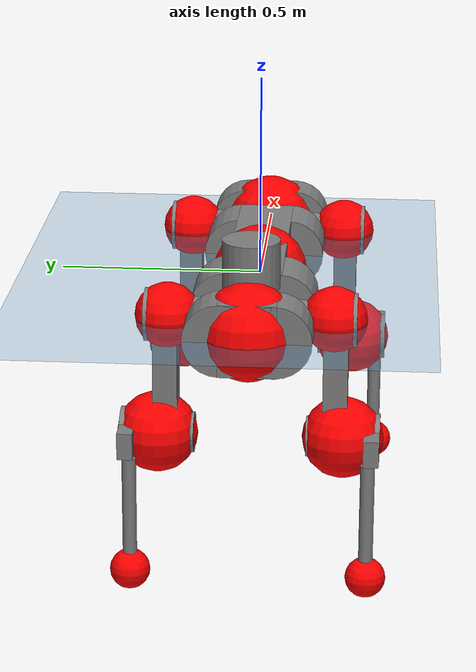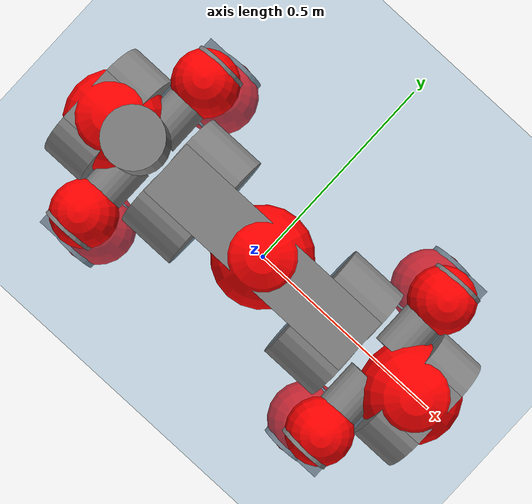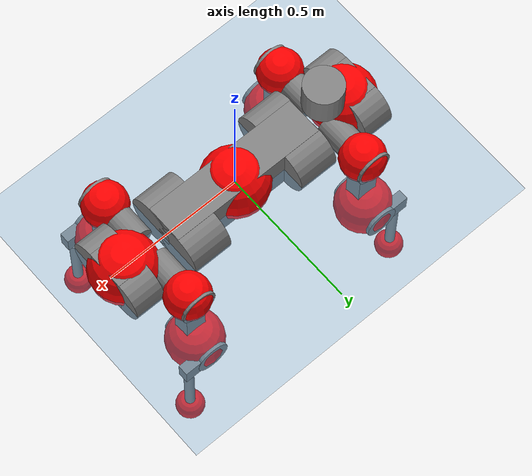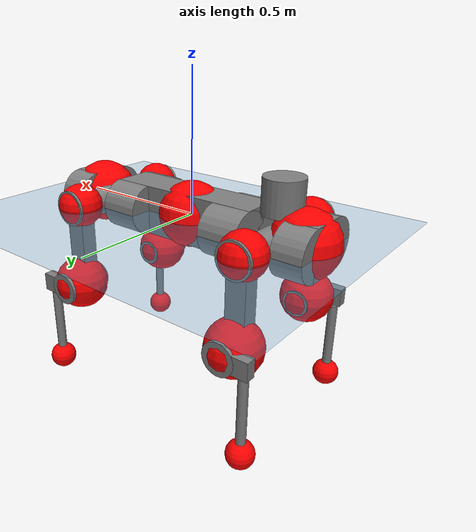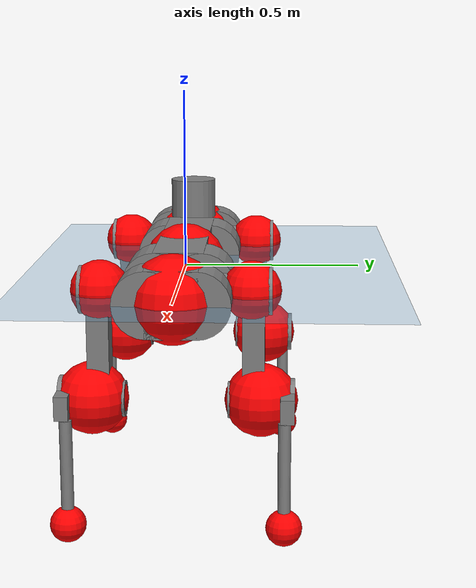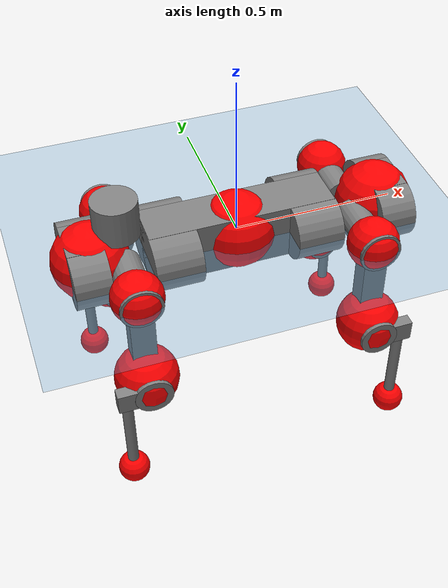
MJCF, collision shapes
<mujoco model="anymal_c">
  <compiler angle="radian" assetdir="assets" balanceinertia="true" inertiafromgeom="false"/>

  <option timestep="0.005" density="1.2" viscosity="2e-05"/>

  <size nkey="1"/>

  <visual>
    <quality shadowsize="8192"/>
    <map shadowclip="0.5"/>
  </visual>

  <default>
    <default class="/">
      <material specular="0" shininess="0.25"/>
      <geom contype="0" conaffinity="0" group="1" solref="-1000 -80"/>
      <site size="0.01 0.005 0.005" group="5"/>
      <general forcelimited="true" forcerange="-80 80" biastype="affine" gainprm="80" biasprm="0 -80 -2"/>
      <default class="anymal_c">
        <joint armature="0.01" damping="0.01" frictionloss="0.1"/>
        <default class="visual">
          <geom type="mesh" group="2"/>
          <default class="visual_zflip"/>
        </default>
        <default class="collision">
          <geom type="cylinder" group="3"/>
          <default class="foot">
            <geom size="0.03 0 0" type="sphere" condim="6" priority="1" friction="0.8 0.02 0.01" solimp="0.015 1 0.03"/>
          </default>
        </default>
      </default>
      <default class="reward_collision_sphere">
        <geom group="5" rgba="1 0 0 1"/>
      </default>
    </default>
  </default>

  <asset>
    <texture type="skybox" colorspace="auto" name="//unnamed_texture_0" builtin="gradient" rgb1="0.95 0.95 0.95" rgb2="0.95 0.95 0.95" width="100" height="600"/>
    <texture type="2d" colorspace="auto" name="texplane" builtin="checker" rgb1="0.345 0.575 0.748" rgb2="0.345 0.575 0.748" markrgb="1 1 1" width="512" height="512"/>
    <texture type="2d" colorspace="linear" name="base" file="base.png"/>
    <texture type="2d" colorspace="linear" name="top_shell" file="top_shell.png"/>
    <texture type="2d" colorspace="linear" name="bottom_shell" file="bottom_shell.png"/>
    <texture type="2d" colorspace="linear" name="remote" file="remote.png"/>
    <texture type="2d" colorspace="linear" name="hatch" file="hatch.png"/>
    <texture type="2d" colorspace="linear" name="handle" file="handle.png"/>
    <texture type="2d" colorspace="linear" name="face" file="face.png"/>
    <texture type="2d" colorspace="linear" name="battery" file="battery.png"/>
    <texture type="2d" colorspace="linear" name="lidar_cage" file="lidar_cage.png"/>
    <texture type="2d" colorspace="linear" name="depth_camera" file="depth_camera.png"/>
    <texture type="2d" colorspace="linear" name="wide_angle_camera" file="wide_angle_camera.png"/>
    <texture type="2d" colorspace="linear" name="lidar" file="lidar.png"/>
    <texture type="2d" colorspace="linear" name="drive" file="drive.png"/>
    <texture type="2d" colorspace="linear" name="hip_l" file="hip_l.png"/>
    <texture type="2d" colorspace="linear" name="shank_l" file="shank_l.png"/>
    <texture type="2d" colorspace="linear" name="foot" file="foot.png"/>
    <texture type="2d" colorspace="linear" name="thigh" file="thigh.png"/>
    <texture type="2d" colorspace="linear" name="shank_r" file="shank_r.png"/>
    <texture type="2d" colorspace="linear" name="hip_r" file="hip_r.png"/>
    <material name="MatPlane" class="/" texture="texplane" texuniform="true" texrepeat="2 2" specular="0.9" shininess="0.5"/>
    <material name="black_plastic" class="/" rgba="0.007 0.007 0.007 1"/>
    <material name="green" class="/" rgba="0.052 0.178 0.033 1"/>
    <material name="red" class="/" rgba="0.178 0.006 0.005 1"/>
    <material name="yellow" class="/" rgba="0.178 0.119 0.006 1"/>
    <material name="lwl" class="/" rgba="0.8 0.8 0.8 1"/>
    <material name="base" class="/" texture="base"/>
    <material name="top_shell" class="/" texture="top_shell"/>
    <material name="bottom_shell" class="/" texture="bottom_shell"/>
    <material name="hip_l" class="/" texture="hip_l"/>
    <material name="thigh" class="/" texture="thigh"/>
    <material name="shank_l" class="/" texture="shank_l"/>
    <material name="foot" class="/" texture="foot"/>
    <material name="hip_r" class="/" texture="hip_r"/>
    <material name="shank" class="/" texture="shank_r"/>
    <material name="hatch" class="/" texture="hatch"/>
    <material name="remote" class="/" texture="remote"/>
    <material name="handle" class="/" texture="handle"/>
    <material name="face" class="/" texture="face"/>
    <material name="depth_camera" class="/" texture="depth_camera"/>
    <material name="wide_angle_camera" class="/" texture="wide_angle_camera"/>
    <material name="battery" class="/" texture="battery"/>
    <material name="lidar_cage" class="/" texture="lidar_cage"/>
    <material name="lidar" class="/" texture="lidar"/>
    <material name="drive" class="/" texture="drive"/>
    <mesh name="base_0" class="/" file="base_0.obj"/>
    <mesh name="base_1" class="/" file="base_1.obj"/>
    <mesh name="base_2" class="/" file="base_2.obj"/>
    <mesh name="base_3" class="/" file="base_3.obj"/>
    <mesh name="base_4" class="/" file="base_4.obj"/>
    <mesh name="base_5" class="/" file="base_5.obj"/>
    <mesh name="top_shell" class="/" file="top_shell.obj"/>
    <mesh name="bottom_shell" class="/" file="bottom_shell.obj"/>
    <mesh name="remote" class="/" file="remote.obj"/>
    <mesh name="handle" class="/" file="handle.obj"/>
    <mesh name="face" class="/" file="face.obj"/>
    <mesh name="wide_angle_camera" class="/" file="wide_angle_camera.obj"/>
    <mesh name="depth_camera" class="/" file="depth_camera.obj"/>
    <mesh name="battery" class="/" file="battery.obj"/>
    <mesh name="lidar_cage" class="/" file="lidar_cage.obj"/>
    <mesh name="lidar" class="/" file="lidar.obj"/>
    <mesh name="drive" class="/" file="drive.obj"/>
    <mesh name="hip_l" class="/" file="hip_l.obj"/>
    <mesh name="thigh" class="/" file="thigh.obj"/>
    <mesh name="shank_l" class="/" file="shank_l.obj"/>
    <mesh name="foot" class="/" file="foot.obj"/>
    <mesh name="hip_r" class="/" file="hip_r.obj"/>
    <mesh name="hatch" class="/" file="hatch.obj"/>
    <mesh name="shank_r" class="/" file="shank_r.obj"/>
  </asset>

  <worldbody>
    <geom name="floor" class="/" size="100 100 0.125" type="plane" group="0" material="MatPlane"/>
    <light name="toplight_shadow" class="/" pos="0 0 5" dir="0.0990148 0.0990148 -0.990148" type="directional" ambient="0.04 0.04 0.04" diffuse="0.55 0.55 0.55" specular="0.12 0.12 0.12"/>
    <light name="toplight_fill" class="/" pos="0 0 5" dir="0.0990148 0.0990148 -0.990148" type="directional" castshadow="false" ambient="0.04 0.04 0.04" diffuse="0.3 0.3 0.3" specular="0.08 0.08 0.08"/>
    <body name="trunk" childclass="anymal_c" pos="0.000334924 -0.000193981 0.000931752" quat="1 -5.2628e-05 3.2219e-05 -9.4032e-05">
      <inertial pos="0.0026282 -0.00231663 0.0516165" quat="0.500149 0.499851 0.501456 0.498539" mass="17.7794" diaginertia="0.58178 0.367 0.27597"/>
      <joint name="//unnamed_joint_0" type="free" armature="0" damping="0" frictionloss="0"/>
      <geom name="//unnamed_geom_1" class="visual" material="green" mesh="base_0"/>
      <geom name="//unnamed_geom_2" class="visual" material="yellow" mesh="base_1"/>
      <geom name="//unnamed_geom_3" class="visual" material="red" mesh="base_2"/>
      <geom name="//unnamed_geom_4" class="visual" material="black_plastic" mesh="base_3"/>
      <geom name="//unnamed_geom_5" class="visual" material="lwl" mesh="base_4"/>
      <geom name="//unnamed_geom_6" class="visual" material="base" mesh="base_5"/>
      <geom name="trunk_1" class="collision" size="0.285348 0.068877 0.0885562" type="box"/>
      <geom name="trunk_2" class="collision" size="0.0885562 0.0713369" pos="0.215927 0.0634628 0" quat="0.707107 0 0.707107 0"/>
      <geom name="trunk_3" class="collision" size="0.0885562 0.0713369" pos="-0.215927 0.0634628 0" quat="0.707107 0 0.707107 0"/>
      <geom name="trunk_4" class="collision" size="0.0885562 0.0713369" pos="0.215927 -0.0634628 0" quat="0.707107 0 0.707107 0"/>
      <geom name="trunk_5" class="collision" size="0.0885562 0.0713369" pos="-0.215927 -0.0634628 0" quat="0.707107 0 0.707107 0"/>
      <geom name="//unnamed_geom_12" class="visual" material="top_shell" mesh="top_shell"/>
      <geom name="//unnamed_geom_13" class="visual" material="bottom_shell" mesh="bottom_shell"/>
      <geom name="//unnamed_geom_14" class="visual" material="remote" mesh="remote"/>
      <geom name="//unnamed_geom_15" class="visual" material="handle" mesh="handle"/>
      <geom name="//unnamed_geom_16" class="visual" pos="0.411502 0 0" quat="1 0 0 0" material="face" mesh="face"/>
      <geom name="trunk_6" class="collision" size="0.0541177 0.068877 0.0885562" pos="0.466104 0 0" type="box"/>
      <geom name="//unnamed_geom_18" class="collision" size="0.0885562 0.0541177" pos="0.466104 0.0634628 0" quat="0.707107 0 0.707107 0"/>
      <geom name="//unnamed_geom_19" class="collision" size="0.0885562 0.0541177" pos="0.466104 -0.0634628 0" quat="0.707107 0 0.707107 0"/>
      <geom name="//unnamed_geom_20" class="visual" pos="0.458314 0 -0.0311868" quat="0.965926 0 0.258819 0" material="depth_camera" mesh="depth_camera"/>
      <geom name="//unnamed_geom_21" class="visual" pos="0.50929 0 0.0157559" material="wide_angle_camera" mesh="wide_angle_camera"/>
      <geom name="//unnamed_geom_22" class="visual_zflip" pos="-0.411502 0 0" quat="0 0 0 1" material="face" mesh="face"/>
      <geom name="trunk_7" class="collision" size="0.0541177 0.068877 0.0885562" pos="-0.466104 0 0" quat="0 0 0 1" type="box"/>
      <geom name="//unnamed_geom_24" class="collision" size="0.0885562 0.0541177" pos="-0.466104 -0.0634628 0" quat="0 -0.707107 0 0.707107"/>
      <geom name="//unnamed_geom_25" class="collision" size="0.0885562 0.0541177" pos="-0.466104 0.0634628 0" quat="0 -0.707107 0 0.707107"/>
      <geom name="//unnamed_geom_26" class="visual" pos="-0.458314 0 -0.0311868" quat="0 -0.258819 0 0.965926" material="depth_camera" mesh="depth_camera"/>
      <geom name="//unnamed_geom_27" class="visual_zflip" pos="-0.50929 0 0.0157559" quat="0 0 0 1" material="wide_angle_camera" mesh="wide_angle_camera"/>
      <geom name="//unnamed_geom_28" class="visual" material="battery" mesh="battery"/>
      <geom name="//unnamed_geom_29" class="visual" pos="0 0.0681914 0.0301211" quat="0.683013 -0.183013 0.183013 0.683013" material="depth_camera" mesh="depth_camera"/>
      <geom name="//unnamed_geom_30" class="visual" pos="0 -0.0681914 0.0301211" quat="0.683013 0.183013 0.183013 -0.683013" material="depth_camera" mesh="depth_camera"/>
      <geom name="//unnamed_geom_31" class="visual" pos="-0.361367 0 0.0773584" quat="1 0 0 0" material="lidar_cage" mesh="lidar_cage"/>
      <geom name="trunk_8" class="collision" size="0.068877 0.0590375" pos="-0.361367 0 0.140508"/>
      <geom name="//unnamed_geom_33" class="visual" pos="-0.361367 -3.38487e-05 0.149665" quat="0.707107 0 0 -0.707107" material="lidar" mesh="lidar"/>
      <geom name="//unnamed_geom_34" class="visual" pos="0.297731 0.0943393 -2.51652e-09" quat="0.258819 0.965926 0 0" material="drive" mesh="drive"/>
      <geom name="//unnamed_geom_35" class="visual" pos="0.297731 -0.0943393 2.51652e-09" quat="0.258819 -0.965926 0 0" material="drive" mesh="drive"/>
      <geom name="//unnamed_geom_36" class="visual" pos="-0.297731 0.0943393 2.51652e-09" quat="0 0 0.965926 -0.258819" material="drive" mesh="drive"/>
      <geom name="//unnamed_geom_37" class="visual" pos="-0.297731 -0.0943393 -2.51652e-09" quat="0 0 -0.965926 -0.258819" material="drive" mesh="drive"/>
      <geom name="//unnamed_geom_38" class="visual" pos="0.115161 0 0.0768321" quat="1 0 0 0" material="hatch" mesh="hatch"/>
      <geom name="//unnamed_geom_39" class="reward_collision_sphere" size="0.118075"/>
      <geom name="//unnamed_geom_40" class="reward_collision_sphere" size="0.118075" pos="0.446745 0 0"/>
      <geom name="//unnamed_geom_41" class="reward_collision_sphere" size="0.118075" pos="-0.446745 0 0"/>
      <site name="imu" pos="0.244292 0.00924111 0.0503256" size="0.00983958"/>
      <camera name="track" pos="0 -1.81322 0" quat="0.707107 0.707107 0 0" mode="trackcom"/>
      <camera name="ego_camera" pos="0.446745 0 -0.0420998" quat="-0.5 -0.5 0.5 0.5"/>
      <body name="LF_HIP" pos="0.298726 0.0947102 -0.000562037" quat="0.258607 0.965983 -0.000132326 2.14049e-05">
        <inertial pos="0.0562924 -0.0146764 -0.00842458" quat="-0.132149 0.701658 -0.134002 0.687209" mass="2.63243" diaginertia="0.00559888 0.00303419 0.0042248"/>
        <joint name="LF_HAA" pos="0 0 0" axis="0.999995 -0.00176698 0.0025882" range="-0.705904 0.492201" armature="0.00963089" damping="0.0114902" frictionloss="0.09953"/>
        <geom name="//unnamed_geom_42" class="visual" pos="0 -0.000148036 2.43147e-05" quat="0.258819 -0.965926 0 0" material="hip_l" mesh="hip_l"/>
        <geom name="//unnamed_geom_43" class="visual" pos="0.0594668 -0.0709741 -0.042056" quat="0.183013 -0.683013 0.683013 0.183013" material="drive" mesh="drive"/>
        <geom name="//unnamed_geom_44" class="collision" size="0.0491979 0.068877" pos="0.0594668 -0.0108429 -0.00726748" quat="-0.353553 -0.612372 0.612372 -0.353553"/>
        <body name="LF_THIGH" pos="0.0610623 -0.067049 -0.04562" quat="0.183955 -0.683196 0.682507 0.183269">
          <inertial pos="0.0310967 0.00240049 -0.258655" quat="0.993199 -0.00735681 -0.07707 0.0869568" mass="2.89571" diaginertia="0.0285029 0.0187592 0.00538282"/>
          <joint name="LF_HFE" pos="0 0 0" axis="0.999994 0.00332146 9.47565e-05" range="-3.15196 3.09924" armature="0.0109691" damping="0.0103233" frictionloss="0.100717"/>
          <geom name="//unnamed_geom_45" class="visual" pos="0.00171418 2.70115e-06 0" quat="0.707107 0 0 -0.707107" material="thigh" mesh="thigh"/>
          <geom name="//unnamed_geom_46" class="collision" size="0.0639573 0.0393583" pos="0.0397107 0 0" quat="0.5 0.5 -0.5 -0.5"/>
          <geom name="//unnamed_geom_47" class="collision" size="0.0368984 0.0295187 0.139047" pos="0.029783 0 -0.148732" quat="0.707107 0 0 -0.707107" type="box"/>
          <geom name="//unnamed_geom_48" class="visual" pos="0.0995746 0 -0.299961" quat="1 0 0 0" material="drive" mesh="drive"/>
          <geom name="//unnamed_geom_49" class="collision" size="0.0491979 0.068877" pos="0.0300809 0 -0.299961" quat="0.707107 0 0.707107 0"/>
          <geom name="//unnamed_geom_50" class="reward_collision_sphere" size="0.0787166" pos="0.0248192 0 0"/>
          <body name="LF_SHANK" pos="0.0999361 -0.000227712 -0.299721" quat="1 0.000228528 -5.41946e-05 -0.00027167">
            <inertial pos="0.00373888 -0.0553957 -0.0860701" quat="0.992677 -0.118894 -0.000215941 -0.0213889" mass="0.553762" diaginertia="0.00978629 0.00579694 0.00143645"/>
            <joint name="LF_KFE" pos="0 0 0" axis="0.999999 0.0010801 0.000406434" range="-3.09406 3.15914" armature="0.0101136" damping="0" frictionloss="0.093565"/>
            <geom name="//unnamed_geom_51" class="visual" pos="0.000558957 0.00298039 0" quat="0.707107 0 0 -0.707107" material="shank_l" mesh="shank_l"/>
            <geom name="LF_kfe_act" class="collision" size="0.0590375 0.0196792" pos="0.0198554 0 0" quat="0.5 0.5 -0.5 -0.5"/>
            <geom name="//unnamed_geom_53" class="collision" size="0.0565766 0.0332086 0.0186952" pos="0.0198554 -0.0521292 0" quat="0.5 0.5 -0.5 -0.5" type="box"/>
            <geom name="//unnamed_geom_54" class="visual" pos="0.0129555 -0.078776 -0.355712" quat="0.382683 0 0 -0.92388" material="foot" mesh="foot"/>
            <geom name="LF_calf" class="collision" size="0.0172193 0.138986" pos="0.0129556 -0.0797364 -0.177856" quat="0.707107 0 0 -0.707107"/>
            <geom name="LF_foot" class="foot" size="0.030526" pos="0.0129556 -0.0797364 -0.332031" quat="0.707107 0 0 -0.707107"/>
            <geom name="//unnamed_geom_57" class="reward_collision_sphere" size="0.0983958" pos="-0.0496384 0 0"/>
            <geom name="//unnamed_geom_58" class="reward_collision_sphere" size="0.0491979" pos="0.0129556 -0.0797364 -0.332031"/>
            <site name="LF_foot" class="foot" pos="0.0129556 -0.0797364 -0.332031" quat="0.707107 0 0 -0.707107" size="0.00983958"/>
          </body>
        </body>
      </body>
      <body name="RF_HIP" pos="0.296056 -0.0937805 -0.00240303" quat="0.258688 -0.965961 -0.000336226 -0.000321233">
        <inertial pos="0.0559867 0.0132027 -0.00800196" quat="0.142215 0.681162 0.131142 0.706112" mass="2.67194" diaginertia="0.00559522 0.00301199 0.00417879"/>
        <joint name="RF_HAA" pos="0 0 0" axis="1 0.000136972 0.000112976" range="-0.482607 0.753458" armature="0.0103175" damping="0.0138708" frictionloss="0.0943189"/>
        <geom name="//unnamed_geom_59" class="visual" pos="0 0.000148034 2.43147e-05" quat="0.258819 0.965926 0 0" material="hip_r" mesh="hip_r"/>
        <geom name="//unnamed_geom_60" class="visual" pos="0.0594668 0.0709741 -0.042056" quat="0.183013 0.683013 0.683013 -0.183013" material="drive" mesh="drive"/>
        <geom name="//unnamed_geom_61" class="collision" size="0.0491979 0.068877" pos="0.0594668 0.0108429 -0.00726748" quat="-0.353553 0.612372 0.612372 0.353553"/>
        <body name="RF_THIGH" pos="0.0607492 0.0677115 -0.046433" quat="0.183004 0.683024 0.683007 -0.183002">
          <inertial pos="0.0300244 -0.000171241 -0.256338" quat="0.992573 -0.00895811 -0.0793585 0.0917644" mass="2.89173" diaginertia="0.0290781 0.0183043 0.00540366"/>
          <joint name="RF_HFE" pos="0 0 0" axis="0.999983 -0.00299751 0.00506236" stiffness="0.014064" range="-3.13687 3.11864" armature="0.00906042" damping="0.017687" frictionloss="0.0989243"/>
          <geom name="//unnamed_geom_62" class="visual" pos="0.00171418 2.70115e-06 0" quat="0.707107 0 0 -0.707107" material="thigh" mesh="thigh"/>
          <geom name="//unnamed_geom_63" class="collision" size="0.0639573 0.0393583" pos="0.0397107 0 0" quat="0.5 0.5 0.5 0.5"/>
          <geom name="//unnamed_geom_64" class="collision" size="0.0368984 0.0295187 0.139047" pos="0.029783 0 -0.148732" quat="0.707107 0 0 0.707107" type="box"/>
          <geom name="//unnamed_geom_65" class="visual" pos="0.0995746 0 -0.299961" quat="1 0 0 0" material="drive" mesh="drive"/>
          <geom name="//unnamed_geom_66" class="collision" size="0.0491979 0.068877" pos="0.0300809 0 -0.299961" quat="0.707107 0 0.707107 0"/>
          <geom name="//unnamed_geom_67" class="reward_collision_sphere" size="0.0787166" pos="0.0248192 0 0"/>
          <body name="RF_SHANK" pos="0.100765 -0.000845103 -0.297991" quat="1 6.21718e-05 -0.000118772 7.43772e-05">
            <inertial pos="0.00580484 0.0557272 -0.0845897" quat="0.993443 0.111926 -0.00265877 0.0231772" mass="0.576834" diaginertia="0.0102088 0.00585186 0.00149038"/>
            <joint name="RF_KFE" pos="0 0 0" axis="0.999997 0.00186293 0.00145536" range="-3.15636 3.12226" armature="0.00975203" damping="0" frictionloss="0.103442"/>
            <geom name="//unnamed_geom_68" class="visual" pos="0.000558954 -0.00298038 0" quat="0.707107 0 0 0.707107" material="shank" mesh="shank_r"/>
            <geom name="RF_kfe_act" class="collision" size="0.0590375 0.0196792" pos="0.0198554 0 0" quat="0.5 0.5 0.5 0.5"/>
            <geom name="//unnamed_geom_70" class="collision" size="0.0565766 0.0332086 0.0186952" pos="0.0198554 0.0521292 0" quat="0.5 0.5 0.5 0.5" type="box"/>
            <geom name="//unnamed_geom_71" class="visual" pos="0.0129558 0.078776 -0.355712" quat="0.382683 0 0 0.92388" material="foot" mesh="foot"/>
            <geom name="RF_calf" class="collision" size="0.0172193 0.138986" pos="0.0129556 0.0797364 -0.177856" quat="0.707107 0 0 0.707107"/>
            <geom name="RF_foot" class="foot" size="0.0265137" pos="0.0129556 0.0797364 -0.332031" quat="0.707107 0 0 0.707107"/>
            <geom name="//unnamed_geom_74" class="reward_collision_sphere" size="0.0983958" pos="-0.0496384 0 0"/>
            <geom name="//unnamed_geom_75" class="reward_collision_sphere" size="0.0491979" pos="0.0129556 0.0797364 -0.332031"/>
            <site name="RF_foot" class="foot" pos="0.0129556 0.0797364 -0.332031" quat="0.707107 0 0 0.707107" size="0.00983958"/>
          </body>
        </body>
      </body>
      <body name="LH_HIP" pos="-0.297291 0.0939304 0.000811085" quat="-0.00021167 -0.000210283 0.965875 -0.25901">
        <inertial pos="0.0561879 0.0142072 -0.00898669" quat="0.13413 0.680084 0.12968 0.708998" mass="2.60398" diaginertia="0.00573435 0.00307989 0.00428182"/>
        <joint name="LH_HAA" pos="0 0 0" axis="0.999981 -0.000959812 0.00614358" range="-0.468089 0.742629" armature="0.0100405" damping="0.0104207" frictionloss="0.10271"/>
        <geom name="//unnamed_geom_76" class="visual" pos="0 0.000148034 2.43147e-05" quat="-0.258819 -0.965926 0 0" material="hip_r" mesh="hip_r"/>
        <geom name="//unnamed_geom_77" class="visual" pos="0.0594668 0.0709741 -0.042056" quat="0.183013 0.683013 0.683013 -0.183013" material="drive" mesh="drive"/>
        <geom name="//unnamed_geom_78" class="collision" size="0.0491979 0.068877" pos="0.0594668 0.0108429 -0.00726748" quat="-0.353553 0.612372 0.612372 0.353553"/>
        <body name="LH_THIGH" pos="0.0588663 0.067154 -0.0441111" quat="0.184038 0.683314 0.682464 -0.182907">
          <inertial pos="0.0306946 0.00231966 -0.259458" quat="0.993246 -0.00373468 -0.0779343 0.0858802" mass="2.84991" diaginertia="0.0294066 0.0182497 0.00552544"/>
          <joint name="LH_HFE" pos="0 0 0" axis="0.999932 -0.00166055 -0.01155" range="-3.14933 3.13657" armature="0.00988001" damping="0.0128783" frictionloss="0.100568"/>
          <geom name="//unnamed_geom_79" class="visual" pos="0.00171418 2.70115e-06 0" quat="0.707107 0 0 -0.707107" material="thigh" mesh="thigh"/>
          <geom name="//unnamed_geom_80" class="collision" size="0.0639573 0.0393583" pos="0.0397107 0 0" quat="0.5 0.5 -0.5 -0.5"/>
          <geom name="//unnamed_geom_81" class="collision" size="0.0368984 0.0295187 0.139047" pos="0.029783 0 -0.148732" quat="0.707107 0 0 -0.707107" type="box"/>
          <geom name="//unnamed_geom_82" class="visual" pos="0.0995746 0 -0.299961" quat="1 0 0 0" material="drive" mesh="drive"/>
          <geom name="//unnamed_geom_83" class="collision" size="0.0491979 0.068877" pos="0.0300809 0 -0.299961" quat="0.707107 0 0.707107 0"/>
          <geom name="//unnamed_geom_84" class="reward_collision_sphere" size="0.0787166" pos="0.0248192 0 0"/>
          <body name="LH_SHANK" pos="0.100415 -0.00178195 -0.300545" quat="1 0.000115958 0.00050299 -0.000105181">
            <inertial pos="0.00535615 0.0565986 -0.0854512" quat="0.993068 0.115031 0.000373518 0.0241493" mass="0.567897" diaginertia="0.00975531 0.00562299 0.00143118"/>
            <joint name="LH_KFE" pos="0 0 0" axis="1 0.000347756 0.000220464" range="-3.10085 3.14229" armature="0.0109765" damping="0.0112107" frictionloss="0.0982639"/>
            <geom name="//unnamed_geom_85" class="visual" pos="0.000558954 -0.00298038 0" quat="-0.707107 0 0 -0.707107" material="shank" mesh="shank_r"/>
            <geom name="LH_kfe_act" class="collision" size="0.0590375 0.0196792" pos="0.0198554 0 0" quat="0.5 0.5 -0.5 -0.5"/>
            <geom name="//unnamed_geom_87" class="collision" size="0.0565766 0.0332086 0.0186952" pos="0.0198554 0.0521292 0" quat="0.5 0.5 -0.5 -0.5" type="box"/>
            <geom name="//unnamed_geom_88" class="visual" pos="0.0129558 0.078776 -0.355712" quat="-0.382683 0 0 -0.92388" material="foot" mesh="foot"/>
            <geom name="LH_calf" class="collision" size="0.0172193 0.138986" pos="0.0129556 0.0797364 -0.177856" quat="0.707107 0 0 -0.707107"/>
            <geom name="LH_foot" class="foot" size="0.0304918" pos="0.0129556 0.0797364 -0.332031" quat="0.707107 0 0 -0.707107"/>
            <geom name="//unnamed_geom_91" class="reward_collision_sphere" size="0.0983958" pos="-0.0496384 0 0"/>
            <geom name="//unnamed_geom_92" class="reward_collision_sphere" size="0.0491979" pos="0.0129556 0.0797364 -0.332031"/>
            <site name="LH_foot" class="foot" pos="0.0129556 0.0797364 -0.332031" quat="0.707107 0 0 -0.707107" size="0.00983958"/>
          </body>
        </body>
      </body>
      <body name="RH_HIP" pos="-0.299902 -0.0952844 -8.06869e-05" quat="-0.000205157 -0.00104683 -0.965718 -0.259591">
        <inertial pos="0.0565659 -0.0130784 -0.00914649" quat="-0.129101 0.710133 -0.13552 0.678733" mass="2.67792" diaginertia="0.00570665 0.00300415 0.00441682"/>
        <joint name="RH_HAA" pos="0 0 0" axis="0.999992 -0.00309362 0.00234927" range="-0.716083 0.500226" armature="0.0107409" damping="0.00894676" frictionloss="0.0976832"/>
        <geom name="//unnamed_geom_93" class="visual" pos="0 -0.000148036 2.43147e-05" quat="-0.258819 0.965926 0 0" material="hip_l" mesh="hip_l"/>
        <geom name="//unnamed_geom_94" class="visual" pos="0.0594668 -0.0709741 -0.042056" quat="-0.183013 0.683013 -0.683013 -0.183013" material="drive" mesh="drive"/>
        <geom name="//unnamed_geom_95" class="collision" size="0.0491979 0.068877" pos="0.0594668 -0.0108429 -0.00726748" quat="0.353553 0.612372 -0.612372 0.353553"/>
        <body name="RH_THIGH" pos="0.0591065 -0.0650082 -0.0441566" quat="-0.183564 0.682866 -0.683023 -0.182968">
          <inertial pos="0.0306974 -0.000854802 -0.2588" quat="0.993079 -0.00599253 -0.0812877 0.0845569" mass="2.8741" diaginertia="0.0287989 0.0183866 0.00536271"/>
          <joint name="RH_HFE" pos="0 0 0" axis="1 0.000185957 0.000765421" stiffness="0.000115079" range="-3.13117 3.19045" armature="0.0087596" damping="0.0142938" frictionloss="0.0961265"/>
          <geom name="//unnamed_geom_96" class="visual" pos="0.00171418 2.70115e-06 0" quat="0.707107 0 0 -0.707107" material="thigh" mesh="thigh"/>
          <geom name="//unnamed_geom_97" class="collision" size="0.0639573 0.0393583" pos="0.0397107 0 0" quat="0.5 0.5 0.5 0.5"/>
          <geom name="//unnamed_geom_98" class="collision" size="0.0368984 0.0295187 0.139047" pos="0.029783 0 -0.148732" quat="0.707107 0 0 0.707107" type="box"/>
          <geom name="//unnamed_geom_99" class="visual" pos="0.0995746 0 -0.299961" quat="1 0 0 0" material="drive" mesh="drive"/>
          <geom name="//unnamed_geom_100" class="collision" size="0.0491979 0.068877" pos="0.0300809 0 -0.299961" quat="0.707107 0 0.707107 0"/>
          <geom name="//unnamed_geom_101" class="reward_collision_sphere" size="0.0787166" pos="0.0248192 0 0"/>
          <body name="RH_SHANK" pos="0.0989558 0.000583233 -0.300265" quat="1 7.03291e-05 -7.26953e-05 0.000167843">
            <inertial pos="0.00595435 -0.0554447 -0.0849474" quat="0.992994 -0.115412 -0.000888626 -0.0253253" mass="0.56165" diaginertia="0.00969525 0.00560251 0.0014352"/>
            <joint name="RH_KFE" pos="0 0 0" axis="0.999997 -3.18635e-05 -0.00223606" range="-3.08846 3.12005" armature="0.00947616" damping="0.00992724" frictionloss="0.0959644"/>
            <geom name="//unnamed_geom_102" class="visual" pos="0.000558957 0.00298039 0" quat="0.707107 0 0 -0.707107" material="shank_l" mesh="shank_l"/>
            <geom name="RH_kfe_act" class="collision" size="0.0590375 0.0196792" pos="0.0198554 0 0" quat="0.5 0.5 0.5 0.5"/>
            <geom name="//unnamed_geom_104" class="collision" size="0.0565766 0.0332086 0.0186952" pos="0.0198554 -0.0521292 0" quat="0.5 0.5 0.5 0.5" type="box"/>
            <geom name="//unnamed_geom_105" class="visual" pos="0.0129555 -0.078776 -0.355712" quat="0.382683 0 0 -0.92388" material="foot" mesh="foot"/>
            <geom name="RH_calf" class="collision" size="0.0172193 0.138986" pos="0.0129556 -0.0797364 -0.177856" quat="0.707107 0 0 0.707107"/>
            <geom name="RH_foot" class="foot" size="0.0296809" pos="0.0129556 -0.0797364 -0.332031" quat="0.707107 0 0 0.707107"/>
            <geom name="//unnamed_geom_108" class="reward_collision_sphere" size="0.0983958" pos="-0.0496384 0 0"/>
            <geom name="//unnamed_geom_109" class="reward_collision_sphere" size="0.0491979" pos="0.0129556 -0.0797364 -0.332031"/>
            <site name="RH_foot" class="foot" pos="0.0129556 -0.0797364 -0.332031" quat="0.707107 0 0 0.707107" size="0.00983958"/>
          </body>
        </body>
      </body>
    </body>
  </worldbody>

  <contact>
    <pair class="/" geom1="floor" geom2="LF_foot" name="//unnamed_contact_0"/>
    <pair class="/" geom1="floor" geom2="RF_foot" name="//unnamed_contact_1"/>
    <pair class="/" geom1="floor" geom2="LH_foot" name="//unnamed_contact_2"/>
    <pair class="/" geom1="floor" geom2="RH_foot" name="//unnamed_contact_3"/>
  </contact>

  <actuator>
    <general name="LF_HAA" class="/" joint="LF_HAA" forcerange="-77.6269 77.6269" gainprm="79.8701" biasprm="0 -79.8701 -1.88482"/>
    <general name="LF_HFE" class="/" joint="LF_HFE" forcerange="-79.085 79.085" gainprm="79.8701" biasprm="0 -79.8701 -1.88482"/>
    <general name="LF_KFE" class="/" joint="LF_KFE" forcerange="-80.6578 80.6578" gainprm="79.8701" biasprm="0 -79.8701 -1.88482"/>
    <general name="RF_HAA" class="/" joint="RF_HAA" forcerange="-81.7434 81.7434" gainprm="79.8701" biasprm="0 -79.8701 -1.88482"/>
    <general name="RF_HFE" class="/" joint="RF_HFE" forcerange="-79.8551 79.8551" gainprm="79.8701" biasprm="0 -79.8701 -1.88482"/>
    <general name="RF_KFE" class="/" joint="RF_KFE" forcerange="-77.0725 77.0725" gainprm="79.8701" biasprm="0 -79.8701 -1.88482"/>
    <general name="LH_HAA" class="/" joint="LH_HAA" forcerange="-81.4212 81.4212" gainprm="79.8701" biasprm="0 -79.8701 -1.88482"/>
    <general name="LH_HFE" class="/" joint="LH_HFE" forcerange="-78.6073 78.6073" gainprm="79.8701" biasprm="0 -79.8701 -1.88482"/>
    <general name="LH_KFE" class="/" joint="LH_KFE" forcerange="-76.3174 76.3174" gainprm="79.8701" biasprm="0 -79.8701 -1.88482"/>
    <general name="RH_HAA" class="/" joint="RH_HAA" forcerange="-81.814 81.814" gainprm="79.8701" biasprm="0 -79.8701 -1.88482"/>
    <general name="RH_HFE" class="/" joint="RH_HFE" forcerange="-76.0201 76.0201" gainprm="79.8701" biasprm="0 -79.8701 -1.88482"/>
    <general name="RH_KFE" class="/" joint="RH_KFE" forcerange="-84.1293 84.1293" gainprm="79.8701" biasprm="0 -79.8701 -1.88482"/>
  </actuator>

  <sensor>
    <gyro site="imu" name="imu_angular_velocity"/>
    <velocimeter site="imu" name="imu_linear_velocity"/>
    <framelinvel objtype="site" objname="LF_foot" name="LF_foot_global_linear_velocity"/>
    <framelinvel objtype="site" objname="RF_foot" name="RF_foot_global_linear_velocity"/>
    <framelinvel objtype="site" objname="LH_foot" name="LH_foot_global_linear_velocity"/>
    <framelinvel objtype="site" objname="RH_foot" name="RH_foot_global_linear_velocity"/>
  </sensor>

  <keyframe>
    <key name="home" qpos="0 0 0.55 1 0 0 0 0 0.4 -0.8 0 -0.4 0.8 0 -0.4 0.8 0 0.4 -0.8"/>
  </keyframe>
</mujoco>
